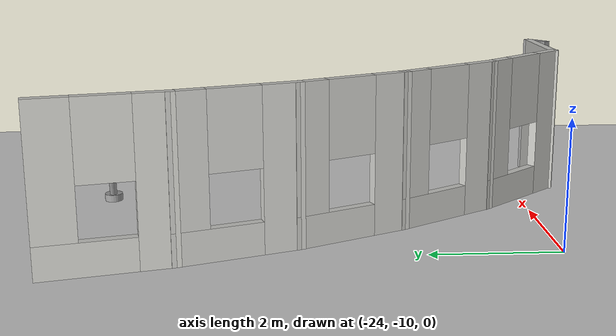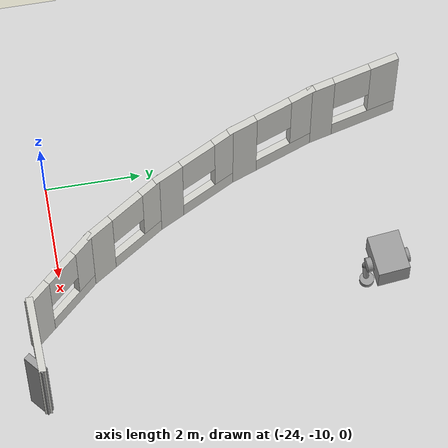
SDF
<sdf version="1.7">
 <world name="default">
  <model name="ground_plane">
   <static>1</static>
   <link name="link">
    <collision name="collision">
     <geometry><plane><normal>0 0 1</normal><size>100 100</size></plane></geometry>
     <surface>
      <contact><collide_bitmask>65535</collide_bitmask></contact>
      <friction><ode><mu>100</mu><mu2>50</mu2></ode></friction>
     </surface>
    </collision>
    <visual name="visual">
     <cast_shadows>0</cast_shadows>
     <geometry><plane><normal>0 0 1</normal><size>100 100</size></plane></geometry>
     <material>
      <script><uri>file://media/materials/scripts/gazebo.material</uri><name>Gazebo/Grey</name></script>
     </material>
    </visual>
   </link>
  </model>
  <model name="model">
   <pose>-4.1341 -0.05921 0 0 -0 0</pose>
   <link name="Wall_77">
    <collision name="Wall_77_Collision">
     <geometry><box><size>0.478502 0.15 2.5</size></box></geometry>
     <pose>0 0 1.25 0 -0 0</pose>
    </collision>
    <visual name="Wall_77_Visual">
     <pose>0 0 1.25 0 -0 0</pose>
     <geometry><box><size>0.478502 0.15 2.5</size></box></geometry>
     <material>
      <script><uri>file://media/materials/scripts/gazebo.material</uri><name>Gazebo/Grey</name></script>
      <ambient>1 1 1 1</ambient>
     </material>
     <meta><layer>0</layer></meta>
    </visual>
    <pose>-15.1791 -10.6669 0 0 -0 0.699893</pose>
   </link>
   <link name="Wall_78">
    <collision name="Wall_78_Collision">
     <geometry><box><size>1.59207 0.15 2.5</size></box></geometry>
     <pose>0 0 1.25 0 -0 0</pose>
    </collision>
    <visual name="Wall_78_Visual">
     <pose>0 0 1.25 0 -0 0</pose>
     <geometry><box><size>1.59207 0.15 2.5</size></box></geometry>
     <material>
      <script><uri>file://media/materials/scripts/gazebo.material</uri><name>Gazebo/CeilingTiled</name></script>
      <ambient>0.964706 1 0.972549 1</ambient>
     </material>
     <meta><layer>0</layer></meta>
    </visual>
    <pose>-15.7742 -10.5809 0 0 -0 -3.11408</pose>
   </link>
   <link name="Wall_80">
    <pose>-17.0835 -9.92626 0 0 -0 2.28824</pose>
    <visual name="Wall_80_Visual_0">
     <pose>-0.679132 0 1.25 0 -0 0</pose>
     <geometry><box><size>0.582002 0.15 2.5</size></box></geometry>
     <material>
      <script><uri>file://media/materials/scripts/gazebo.material</uri><name>Gazebo/CeilingTiled</name></script>
      <ambient>0 0.423529 0.960784 1</ambient>
     </material>
     <meta><layer>0</layer></meta>
    </visual>
    <collision name="Wall_80_Collision_0">
     <geometry><box><size>0.582002 0.15 2.5</size></box></geometry>
     <pose>-0.679132 0 1.25 0 -0 0</pose>
    </collision>
    <visual name="Wall_80_Visual_1">
     <pose>0.291001 0 0.25 0 -0 0</pose>
     <geometry><box><size>1.35826 0.15 0.5</size></box></geometry>
     <material>
      <script><uri>file://media/materials/scripts/gazebo.material</uri><name>Gazebo/CeilingTiled</name></script>
      <ambient>0 0.423529 0.960784 1</ambient>
     </material>
     <meta><layer>0</layer></meta>
    </visual>
    <collision name="Wall_80_Collision_1">
     <geometry><box><size>1.35826 0.15 0.5</size></box></geometry>
     <pose>0.291001 0 0.25 0 -0 0</pose>
    </collision>
    <visual name="Wall_80_Visual_2">
     <pose>0.691001 0 1.5 0 -0 0</pose>
     <geometry><box><size>0.558264 0.15 2</size></box></geometry>
     <material>
      <script><uri>file://media/materials/scripts/gazebo.material</uri><name>Gazebo/CeilingTiled</name></script>
      <ambient>0 0.423529 0.960784 1</ambient>
     </material>
     <meta><layer>0</layer></meta>
    </visual>
    <collision name="Wall_80_Collision_2">
     <geometry><box><size>0.558264 0.15 2</size></box></geometry>
     <pose>0.691001 0 1.5 0 -0 0</pose>
    </collision>
    <visual name="Wall_80_Visual_3">
     <pose>0.011869 0 1.9 0 -0 0</pose>
     <geometry><box><size>0.8 0.15 1.2</size></box></geometry>
     <material>
      <script><uri>file://media/materials/scripts/gazebo.material</uri><name>Gazebo/CeilingTiled</name></script>
      <ambient>0 0.423529 0.960784 1</ambient>
     </material>
     <meta><layer>0</layer></meta>
    </visual>
    <collision name="Wall_80_Collision_3">
     <geometry><box><size>0.8 0.15 1.2</size></box></geometry>
     <pose>0.011869 0 1.9 0 -0 0</pose>
    </collision>
   </link>
   <link name="Wall_81">
    <pose>-18.1613 -8.48473 0 0 -0 2.13864</pose>
    <visual name="Wall_81_Visual_0">
     <pose>-0.666849 0 1.25 0 -0 0</pose>
     <geometry><box><size>0.635978 0.15 2.5</size></box></geometry>
     <material>
      <script><uri>file://media/materials/scripts/gazebo.material</uri><name>Gazebo/CeilingTiled</name></script>
      <ambient>0 0.423529 0.960784 1</ambient>
     </material>
     <meta><layer>0</layer></meta>
    </visual>
    <collision name="Wall_81_Collision_0">
     <geometry><box><size>0.635978 0.15 2.5</size></box></geometry>
     <pose>-0.666849 0 1.25 0 -0 0</pose>
    </collision>
    <visual name="Wall_81_Visual_1">
     <pose>0.317989 0 0.25 0 -0 0</pose>
     <geometry><box><size>1.3337 0.15 0.5</size></box></geometry>
     <material>
      <script><uri>file://media/materials/scripts/gazebo.material</uri><name>Gazebo/CeilingTiled</name></script>
      <ambient>0 0.423529 0.960784 1</ambient>
     </material>
     <meta><layer>0</layer></meta>
    </visual>
    <collision name="Wall_81_Collision_1">
     <geometry><box><size>1.3337 0.15 0.5</size></box></geometry>
     <pose>0.317989 0 0.25 0 -0 0</pose>
    </collision>
    <visual name="Wall_81_Visual_2">
     <pose>0.717989 0 1.5 0 -0 0</pose>
     <geometry><box><size>0.533697 0.15 2</size></box></geometry>
     <material>
      <script><uri>file://media/materials/scripts/gazebo.material</uri><name>Gazebo/CeilingTiled</name></script>
      <ambient>0 0.423529 0.960784 1</ambient>
     </material>
     <meta><layer>0</layer></meta>
    </visual>
    <collision name="Wall_81_Collision_2">
     <geometry><box><size>0.533697 0.15 2</size></box></geometry>
     <pose>0.717989 0 1.5 0 -0 0</pose>
    </collision>
    <visual name="Wall_81_Visual_3">
     <pose>0.05114 0 1.9 0 -0 0</pose>
     <geometry><box><size>0.8 0.15 1.2</size></box></geometry>
     <material>
      <script><uri>file://media/materials/scripts/gazebo.material</uri><name>Gazebo/CeilingTiled</name></script>
      <ambient>0 0.423529 0.960784 1</ambient>
     </material>
     <meta><layer>0</layer></meta>
    </visual>
    <collision name="Wall_81_Collision_3">
     <geometry><box><size>0.8 0.15 1.2</size></box></geometry>
     <pose>0.05114 0 1.9 0 -0 0</pose>
    </collision>
   </link>
   <link name="Wall_83">
    <pose>-19.0596 -6.89911 0 0 -0 2.03407</pose>
    <visual name="Wall_83_Visual_0">
     <pose>-0.667927 0 1.25 0 -0 0</pose>
     <geometry><box><size>0.644177 0.15 2.5</size></box></geometry>
     <material>
      <script><uri>file://media/materials/scripts/gazebo.material</uri><name>Gazebo/CeilingTiled</name></script>
      <ambient>0 0.423529 0.960784 1</ambient>
     </material>
     <meta><layer>0</layer></meta>
    </visual>
    <collision name="Wall_83_Collision_0">
     <geometry><box><size>0.644177 0.15 2.5</size></box></geometry>
     <pose>-0.667927 0 1.25 0 -0 0</pose>
    </collision>
    <visual name="Wall_83_Visual_1">
     <pose>0.322089 0 0.25 0 -0 0</pose>
     <geometry><box><size>1.33585 0.15 0.5</size></box></geometry>
     <material>
      <script><uri>file://media/materials/scripts/gazebo.material</uri><name>Gazebo/CeilingTiled</name></script>
      <ambient>0 0.423529 0.960784 1</ambient>
     </material>
     <meta><layer>0</layer></meta>
    </visual>
    <collision name="Wall_83_Collision_1">
     <geometry><box><size>1.33585 0.15 0.5</size></box></geometry>
     <pose>0.322089 0 0.25 0 -0 0</pose>
    </collision>
    <visual name="Wall_83_Visual_2">
     <pose>0.722089 0 1.5 0 -0 0</pose>
     <geometry><box><size>0.535853 0.15 2</size></box></geometry>
     <material>
      <script><uri>file://media/materials/scripts/gazebo.material</uri><name>Gazebo/CeilingTiled</name></script>
      <ambient>0 0.423529 0.960784 1</ambient>
     </material>
     <meta><layer>0</layer></meta>
    </visual>
    <collision name="Wall_83_Collision_2">
     <geometry><box><size>0.535853 0.15 2</size></box></geometry>
     <pose>0.722089 0 1.5 0 -0 0</pose>
    </collision>
    <visual name="Wall_83_Visual_3">
     <pose>0.054162 0 1.9 0 -0 0</pose>
     <geometry><box><size>0.8 0.15 1.2</size></box></geometry>
     <material>
      <script><uri>file://media/materials/scripts/gazebo.material</uri><name>Gazebo/CeilingTiled</name></script>
      <ambient>0 0.423529 0.960784 1</ambient>
     </material>
     <meta><layer>0</layer></meta>
    </visual>
    <collision name="Wall_83_Collision_3">
     <geometry><box><size>0.8 0.15 1.2</size></box></geometry>
     <pose>0.054162 0 1.9 0 -0 0</pose>
    </collision>
   </link>
   <link name="Wall_84">
    <pose>-19.7859 -5.2077 0 0 -0 1.91957</pose>
    <visual name="Wall_84_Visual_0">
     <pose>-0.683971 0 1.25 0 -0 0</pose>
     <geometry><box><size>0.639593 0.15 2.5</size></box></geometry>
     <material>
      <script><uri>file://media/materials/scripts/gazebo.material</uri><name>Gazebo/CeilingTiled</name></script>
      <ambient>0 0.423529 0.960784 1</ambient>
     </material>
     <meta><layer>0</layer></meta>
    </visual>
    <collision name="Wall_84_Collision_0">
     <geometry><box><size>0.639593 0.15 2.5</size></box></geometry>
     <pose>-0.683971 0 1.25 0 -0 0</pose>
    </collision>
    <visual name="Wall_84_Visual_1">
     <pose>0.319797 0 0.25 0 -0 0</pose>
     <geometry><box><size>1.36794 0.15 0.5</size></box></geometry>
     <material>
      <script><uri>file://media/materials/scripts/gazebo.material</uri><name>Gazebo/CeilingTiled</name></script>
      <ambient>0 0.423529 0.960784 1</ambient>
     </material>
     <meta><layer>0</layer></meta>
    </visual>
    <collision name="Wall_84_Collision_1">
     <geometry><box><size>1.36794 0.15 0.5</size></box></geometry>
     <pose>0.319797 0 0.25 0 -0 0</pose>
    </collision>
    <visual name="Wall_84_Visual_2">
     <pose>0.719797 0 1.5 0 -0 0</pose>
     <geometry><box><size>0.567942 0.15 2</size></box></geometry>
     <material>
      <script><uri>file://media/materials/scripts/gazebo.material</uri><name>Gazebo/CeilingTiled</name></script>
      <ambient>0 0.423529 0.960784 1</ambient>
     </material>
     <meta><layer>0</layer></meta>
    </visual>
    <collision name="Wall_84_Collision_2">
     <geometry><box><size>0.567942 0.15 2</size></box></geometry>
     <pose>0.719797 0 1.5 0 -0 0</pose>
    </collision>
    <visual name="Wall_84_Visual_3">
     <pose>0.035826 0 1.9 0 -0 0</pose>
     <geometry><box><size>0.8 0.15 1.2</size></box></geometry>
     <material>
      <script><uri>file://media/materials/scripts/gazebo.material</uri><name>Gazebo/CeilingTiled</name></script>
      <ambient>0 0.423529 0.960784 1</ambient>
     </material>
     <meta><layer>0</layer></meta>
    </visual>
    <collision name="Wall_84_Collision_3">
     <geometry><box><size>0.8 0.15 1.2</size></box></geometry>
     <pose>0.035826 0 1.9 0 -0 0</pose>
    </collision>
   </link>
   <link name="Wall_86">
    <pose>-20.3246 -3.43824 0 0 -0 1.81282</pose>
    <visual name="Wall_86_Visual_0">
     <pose>-0.710407 0 1.25 0 -0 0</pose>
     <geometry><box><size>0.576238 0.15 2.5</size></box></geometry>
     <material>
      <script><uri>file://media/materials/scripts/gazebo.material</uri><name>Gazebo/CeilingTiled</name></script>
      <ambient>0 0.423529 0.960784 1</ambient>
     </material>
     <meta><layer>0</layer></meta>
    </visual>
    <collision name="Wall_86_Collision_0">
     <geometry><box><size>0.576238 0.15 2.5</size></box></geometry>
     <pose>-0.710407 0 1.25 0 -0 0</pose>
    </collision>
    <visual name="Wall_86_Visual_1">
     <pose>0.288119 0 0.25 0 -0 0</pose>
     <geometry><box><size>1.42081 0.15 0.5</size></box></geometry>
     <material>
      <script><uri>file://media/materials/scripts/gazebo.material</uri><name>Gazebo/CeilingTiled</name></script>
      <ambient>0 0.423529 0.960784 1</ambient>
     </material>
     <meta><layer>0</layer></meta>
    </visual>
    <collision name="Wall_86_Collision_1">
     <geometry><box><size>1.42081 0.15 0.5</size></box></geometry>
     <pose>0.288119 0 0.25 0 -0 0</pose>
    </collision>
    <visual name="Wall_86_Visual_2">
     <pose>0.688119 0 1.5 0 -0 0</pose>
     <geometry><box><size>0.620814 0.15 2</size></box></geometry>
     <material>
      <script><uri>file://media/materials/scripts/gazebo.material</uri><name>Gazebo/CeilingTiled</name></script>
      <ambient>0 0.423529 0.960784 1</ambient>
     </material>
     <meta><layer>0</layer></meta>
    </visual>
    <collision name="Wall_86_Collision_2">
     <geometry><box><size>0.620814 0.15 2</size></box></geometry>
     <pose>0.688119 0 1.5 0 -0 0</pose>
    </collision>
    <visual name="Wall_86_Visual_3">
     <pose>-0.022288 0 1.9 0 -0 0</pose>
     <geometry><box><size>0.8 0.15 1.2</size></box></geometry>
     <material>
      <script><uri>file://media/materials/scripts/gazebo.material</uri><name>Gazebo/CeilingTiled</name></script>
      <ambient>0 0.423529 0.960784 1</ambient>
     </material>
     <meta><layer>0</layer></meta>
    </visual>
    <collision name="Wall_86_Collision_3">
     <geometry><box><size>0.8 0.15 1.2</size></box></geometry>
     <pose>-0.022288 0 1.9 0 -0 0</pose>
    </collision>
   </link>
   <static>1</static>
  </model>
  <model name="model_1">
   <link name="link_0_clone">
    <inertial>
     <mass>1</mass>
     <inertia><ixx>0.145833</ixx><ixy>0</ixy><ixz>0</ixz><iyy>0.145833</iyy><iyz>0</iyz><izz>0.125</izz></inertia>
    </inertial>
    <pose>-1.70371 0.05719 0.046277 0 -0 0</pose>
    <visual name="visual">
     <geometry><cylinder><radius>0.15</radius><length>0.12</length></cylinder></geometry>
     <material>
      <lighting>1</lighting>
      <script><uri>file://media/materials/scripts/gazebo.material</uri><name>Gazebo/Grey</name></script>
      <shader type="pixel"><normal_map>__default__</normal_map></shader>
      <ambient>0.3 0.3 0.3 1</ambient>
      <diffuse>0.7 0.7 0.7 1</diffuse>
      <specular>0.01 0.01 0.01 1</specular>
      <emissive>0 0 0 1</emissive>
     </material>
    </visual>
    <collision name="collision">
     <geometry><cylinder><radius>0.15</radius><length>0.12</length></cylinder></geometry>
     <surface>
      <friction>
       <ode><mu>1</mu><mu2>1</mu2><fdir1>0 0 0</fdir1><slip1>0</slip1><slip2>0</slip2></ode>
       <torsional>
        <coefficient>1</coefficient>
        <patch_radius>0</patch_radius>
        <surface_radius>0</surface_radius>
        <use_patch_radius>1</use_patch_radius>
        <ode><slip>0</slip></ode>
       </torsional>
      </friction>
      <bounce><restitution_coefficient>0</restitution_coefficient><threshold>1e+06</threshold></bounce>
      <contact>
       <collide_without_contact>0</collide_without_contact>
       <collide_without_contact_bitmask>1</collide_without_contact_bitmask>
       <collide_bitmask>1</collide_bitmask>
       <ode>
        <soft_cfm>0</soft_cfm>
        <soft_erp>0.2</soft_erp>
        <kp>1e+13</kp>
        <kd>1</kd>
        <max_vel>0.01</max_vel>
        <min_depth>0</min_depth>
       </ode>
       <bullet>
        <split_impulse>1</split_impulse>
        <split_impulse_penetration_threshold>-0.01</split_impulse_penetration_threshold>
        <soft_cfm>0</soft_cfm>
        <soft_erp>0.2</soft_erp>
        <kp>1e+13</kp>
        <kd>1</kd>
       </bullet>
      </contact>
     </surface>
    </collision>
   </link>
   <link name="link_0_clone_clone">
    <inertial>
     <mass>1</mass>
     <inertia><ixx>0.145833</ixx><ixy>0</ixy><ixz>0</ixz><iyy>0.145833</iyy><iyz>0</iyz><izz>0.125</izz></inertia>
    </inertial>
    <pose>-1.70371 -0.715173 0.046277 0 -0 0</pose>
    <visual name="visual">
     <geometry><cylinder><radius>0.15</radius><length>0.12</length></cylinder></geometry>
     <material>
      <lighting>1</lighting>
      <script><uri>file://media/materials/scripts/gazebo.material</uri><name>Gazebo/Grey</name></script>
      <shader type="pixel"><normal_map>__default__</normal_map></shader>
      <ambient>0.3 0.3 0.3 1</ambient>
      <diffuse>0.7 0.7 0.7 1</diffuse>
      <specular>0.01 0.01 0.01 1</specular>
      <emissive>0 0 0 1</emissive>
     </material>
    </visual>
    <collision name="collision">
     <geometry><cylinder><radius>0.15</radius><length>0.12</length></cylinder></geometry>
     <surface>
      <friction>
       <ode><mu>1</mu><mu2>1</mu2><fdir1>0 0 0</fdir1><slip1>0</slip1><slip2>0</slip2></ode>
       <torsional>
        <coefficient>1</coefficient>
        <patch_radius>0</patch_radius>
        <surface_radius>0</surface_radius>
        <use_patch_radius>1</use_patch_radius>
        <ode><slip>0</slip></ode>
       </torsional>
      </friction>
      <bounce><restitution_coefficient>0</restitution_coefficient><threshold>1e+06</threshold></bounce>
      <contact>
       <collide_without_contact>0</collide_without_contact>
       <collide_without_contact_bitmask>1</collide_without_contact_bitmask>
       <collide_bitmask>1</collide_bitmask>
       <ode>
        <soft_cfm>0</soft_cfm>
        <soft_erp>0.2</soft_erp>
        <kp>1e+13</kp>
        <kd>1</kd>
        <max_vel>0.01</max_vel>
        <min_depth>0</min_depth>
       </ode>
       <bullet>
        <split_impulse>1</split_impulse>
        <split_impulse_penetration_threshold>-0.01</split_impulse_penetration_threshold>
        <soft_cfm>0</soft_cfm>
        <soft_erp>0.2</soft_erp>
        <kp>1e+13</kp>
        <kd>1</kd>
       </bullet>
      </contact>
     </surface>
    </collision>
   </link>
   <link name="link_1_clone_0">
    <inertial>
     <mass>1</mass>
     <inertia><ixx>0.145833</ixx><ixy>0</ixy><ixz>0</ixz><iyy>0.145833</iyy><iyz>0</iyz><izz>0.125</izz></inertia>
    </inertial>
    <pose>-1.79935 -0.715173 0.645744 0 -0 0</pose>
    <visual name="visual">
     <pose>0 0 0 0 0.35 0</pose>
     <geometry><cylinder><radius>0.06</radius><length>0.4</length></cylinder></geometry>
     <material>
      <lighting>1</lighting>
      <script><uri>file://media/materials/scripts/gazebo.material</uri><name>Gazebo/Grey</name></script>
      <shader type="pixel"><normal_map>__default__</normal_map></shader>
      <ambient>0.3 0.3 0.3 1</ambient>
      <diffuse>0.7 0.7 0.7 1</diffuse>
      <specular>0.01 0.01 0.01 1</specular>
      <emissive>0 0 0 1</emissive>
     </material>
    </visual>
    <collision name="collision">
     <pose>0 0 0 0 0.35 0</pose>
     <geometry><cylinder><radius>0.06</radius><length>0.4</length></cylinder></geometry>
     <surface>
      <friction>
       <ode><mu>1</mu><mu2>1</mu2><fdir1>0 0 0</fdir1><slip1>0</slip1><slip2>0</slip2></ode>
       <torsional>
        <coefficient>1</coefficient>
        <patch_radius>0</patch_radius>
        <surface_radius>0</surface_radius>
        <use_patch_radius>1</use_patch_radius>
        <ode><slip>0</slip></ode>
       </torsional>
      </friction>
      <bounce><restitution_coefficient>0</restitution_coefficient><threshold>1e+06</threshold></bounce>
      <contact>
       <collide_without_contact>0</collide_without_contact>
       <collide_without_contact_bitmask>1</collide_without_contact_bitmask>
       <collide_bitmask>1</collide_bitmask>
       <ode>
        <soft_cfm>0</soft_cfm>
        <soft_erp>0.2</soft_erp>
        <kp>1e+13</kp>
        <kd>1</kd>
        <max_vel>0.01</max_vel>
        <min_depth>0</min_depth>
       </ode>
       <bullet>
        <split_impulse>1</split_impulse>
        <split_impulse_penetration_threshold>-0.01</split_impulse_penetration_threshold>
        <soft_cfm>0</soft_cfm>
        <soft_erp>0.2</soft_erp>
        <kp>1e+13</kp>
        <kd>1</kd>
       </bullet>
      </contact>
     </surface>
    </collision>
   </link>
   <link name="link_1_clone_0_clone">
    <inertial>
     <mass>1</mass>
     <inertia><ixx>0.145833</ixx><ixy>0</ixy><ixz>0</ixz><iyy>0.145833</iyy><iyz>0</iyz><izz>0.125</izz></inertia>
    </inertial>
    <pose>-1.8087 -0.714544 0.232355 0 -0 0</pose>
    <visual name="visual">
     <pose>0 0 0 0 -0.35 0</pose>
     <geometry><cylinder><radius>0.06</radius><length>0.4</length></cylinder></geometry>
     <material>
      <lighting>1</lighting>
      <script><uri>file://media/materials/scripts/gazebo.material</uri><name>Gazebo/Grey</name></script>
      <shader type="pixel"><normal_map>__default__</normal_map></shader>
      <ambient>0.3 0.3 0.3 1</ambient>
      <diffuse>0.7 0.7 0.7 1</diffuse>
      <specular>0.01 0.01 0.01 1</specular>
      <emissive>0 0 0 1</emissive>
     </material>
    </visual>
    <collision name="collision">
     <pose>0 0 0 0 -0.35 0</pose>
     <geometry><cylinder><radius>0.06</radius><length>0.4</length></cylinder></geometry>
     <surface>
      <friction>
       <ode><mu>1</mu><mu2>1</mu2><fdir1>0 0 0</fdir1><slip1>0</slip1><slip2>0</slip2></ode>
       <torsional>
        <coefficient>1</coefficient>
        <patch_radius>0</patch_radius>
        <surface_radius>0</surface_radius>
        <use_patch_radius>1</use_patch_radius>
        <ode><slip>0</slip></ode>
       </torsional>
      </friction>
      <bounce><restitution_coefficient>0</restitution_coefficient><threshold>1e+06</threshold></bounce>
      <contact>
       <collide_without_contact>0</collide_without_contact>
       <collide_without_contact_bitmask>1</collide_without_contact_bitmask>
       <collide_bitmask>1</collide_bitmask>
       <ode>
        <soft_cfm>0</soft_cfm>
        <soft_erp>0.2</soft_erp>
        <kp>1e+13</kp>
        <kd>1</kd>
        <max_vel>0.01</max_vel>
        <min_depth>0</min_depth>
       </ode>
       <bullet>
        <split_impulse>1</split_impulse>
        <split_impulse_penetration_threshold>-0.01</split_impulse_penetration_threshold>
        <soft_cfm>0</soft_cfm>
        <soft_erp>0.2</soft_erp>
        <kp>1e+13</kp>
        <kd>1</kd>
       </bullet>
      </contact>
     </surface>
    </collision>
   </link>
   <link name="link_1_clone_0_clone_0">
    <inertial>
     <mass>1</mass>
     <inertia><ixx>0.145833</ixx><ixy>0</ixy><ixz>0</ixz><iyy>0.145833</iyy><iyz>0</iyz><izz>0.125</izz></inertia>
    </inertial>
    <pose>-1.79935 0.058729 0.645744 0 -0 0</pose>
    <visual name="visual">
     <pose>0 0 0 0 0.35 0</pose>
     <geometry><cylinder><radius>0.06</radius><length>0.4</length></cylinder></geometry>
     <material>
      <lighting>1</lighting>
      <script><uri>file://media/materials/scripts/gazebo.material</uri><name>Gazebo/Grey</name></script>
      <shader type="pixel"><normal_map>__default__</normal_map></shader>
      <ambient>0.3 0.3 0.3 1</ambient>
      <diffuse>0.7 0.7 0.7 1</diffuse>
      <specular>0.01 0.01 0.01 1</specular>
      <emissive>0 0 0 1</emissive>
     </material>
    </visual>
    <collision name="collision">
     <pose>0 0 0 0 0.35 0</pose>
     <geometry><cylinder><radius>0.06</radius><length>0.4</length></cylinder></geometry>
     <surface>
      <friction>
       <ode><mu>1</mu><mu2>1</mu2><fdir1>0 0 0</fdir1><slip1>0</slip1><slip2>0</slip2></ode>
       <torsional>
        <coefficient>1</coefficient>
        <patch_radius>0</patch_radius>
        <surface_radius>0</surface_radius>
        <use_patch_radius>1</use_patch_radius>
        <ode><slip>0</slip></ode>
       </torsional>
      </friction>
      <bounce><restitution_coefficient>0</restitution_coefficient><threshold>1e+06</threshold></bounce>
      <contact>
       <collide_without_contact>0</collide_without_contact>
       <collide_without_contact_bitmask>1</collide_without_contact_bitmask>
       <collide_bitmask>1</collide_bitmask>
       <ode>
        <soft_cfm>0</soft_cfm>
        <soft_erp>0.2</soft_erp>
        <kp>1e+13</kp>
        <kd>1</kd>
        <max_vel>0.01</max_vel>
        <min_depth>0</min_depth>
       </ode>
       <bullet>
        <split_impulse>1</split_impulse>
        <split_impulse_penetration_threshold>-0.01</split_impulse_penetration_threshold>
        <soft_cfm>0</soft_cfm>
        <soft_erp>0.2</soft_erp>
        <kp>1e+13</kp>
        <kd>1</kd>
       </bullet>
      </contact>
     </surface>
    </collision>
   </link>
   <link name="link_1_clone_0_clone_clone">
    <inertial>
     <mass>1</mass>
     <inertia><ixx>0.145833</ixx><ixy>0</ixy><ixz>0</ixz><iyy>0.145833</iyy><iyz>0</iyz><izz>0.125</izz></inertia>
    </inertial>
    <pose>-1.8087 0.057646 0.232355 0 -0 0</pose>
    <visual name="visual">
     <pose>0 0 0 0 -0.35 0</pose>
     <geometry><cylinder><radius>0.06</radius><length>0.4</length></cylinder></geometry>
     <material>
      <lighting>1</lighting>
      <script><uri>file://media/materials/scripts/gazebo.material</uri><name>Gazebo/Grey</name></script>
      <shader type="pixel"><normal_map>__default__</normal_map></shader>
      <ambient>0.3 0.3 0.3 1</ambient>
      <diffuse>0.7 0.7 0.7 1</diffuse>
      <specular>0.01 0.01 0.01 1</specular>
      <emissive>0 0 0 1</emissive>
     </material>
    </visual>
    <collision name="collision">
     <pose>0 0 0 0 -0.35 0</pose>
     <geometry><cylinder><radius>0.06</radius><length>0.4</length></cylinder></geometry>
     <surface>
      <friction>
       <ode><mu>1</mu><mu2>1</mu2><fdir1>0 0 0</fdir1><slip1>0</slip1><slip2>0</slip2></ode>
       <torsional>
        <coefficient>1</coefficient>
        <patch_radius>0</patch_radius>
        <surface_radius>0</surface_radius>
        <use_patch_radius>1</use_patch_radius>
        <ode><slip>0</slip></ode>
       </torsional>
      </friction>
      <bounce><restitution_coefficient>0</restitution_coefficient><threshold>1e+06</threshold></bounce>
      <contact>
       <collide_without_contact>0</collide_without_contact>
       <collide_without_contact_bitmask>1</collide_without_contact_bitmask>
       <collide_bitmask>1</collide_bitmask>
       <ode>
        <soft_cfm>0</soft_cfm>
        <soft_erp>0.2</soft_erp>
        <kp>1e+13</kp>
        <kd>1</kd>
        <max_vel>0.01</max_vel>
        <min_depth>0</min_depth>
       </ode>
       <bullet>
        <split_impulse>1</split_impulse>
        <split_impulse_penetration_threshold>-0.01</split_impulse_penetration_threshold>
        <soft_cfm>0</soft_cfm>
        <soft_erp>0.2</soft_erp>
        <kp>1e+13</kp>
        <kd>1</kd>
       </bullet>
      </contact>
     </surface>
    </collision>
   </link>
   <link name="link_2_clone">
    <inertial>
     <mass>1</mass>
     <inertia><ixx>0.145833</ixx><ixy>0</ixy><ixz>0</ixz><iyy>0.145833</iyy><iyz>0</iyz><izz>0.125</izz></inertia>
    </inertial>
    <pose>-1.66905 0.061405 0.956276 0 -0 0</pose>
    <visual name="visual">
     <pose>0 0 0 1.5708 -0 0</pose>
     <geometry><cylinder><radius>0.15</radius><length>0.12</length></cylinder></geometry>
     <material>
      <lighting>1</lighting>
      <script><uri>file://media/materials/scripts/gazebo.material</uri><name>Gazebo/Grey</name></script>
      <shader type="pixel"><normal_map>__default__</normal_map></shader>
      <ambient>0.3 0.3 0.3 1</ambient>
      <diffuse>0.7 0.7 0.7 1</diffuse>
      <specular>0.01 0.01 0.01 1</specular>
      <emissive>0 0 0 1</emissive>
     </material>
    </visual>
    <collision name="collision">
     <pose>0 0 0 1.5708 -0 0</pose>
     <geometry><cylinder><radius>0.15</radius><length>0.12</length></cylinder></geometry>
     <surface>
      <friction>
       <ode><mu>1</mu><mu2>1</mu2><fdir1>0 0 0</fdir1><slip1>0</slip1><slip2>0</slip2></ode>
       <torsional>
        <coefficient>1</coefficient>
        <patch_radius>0</patch_radius>
        <surface_radius>0</surface_radius>
        <use_patch_radius>1</use_patch_radius>
        <ode><slip>0</slip></ode>
       </torsional>
      </friction>
      <bounce><restitution_coefficient>0</restitution_coefficient><threshold>1e+06</threshold></bounce>
      <contact>
       <collide_without_contact>0</collide_without_contact>
       <collide_without_contact_bitmask>1</collide_without_contact_bitmask>
       <collide_bitmask>1</collide_bitmask>
       <ode>
        <soft_cfm>0</soft_cfm>
        <soft_erp>0.2</soft_erp>
        <kp>1e+13</kp>
        <kd>1</kd>
        <max_vel>0.01</max_vel>
        <min_depth>0</min_depth>
       </ode>
       <bullet>
        <split_impulse>1</split_impulse>
        <split_impulse_penetration_threshold>-0.01</split_impulse_penetration_threshold>
        <soft_cfm>0</soft_cfm>
        <soft_erp>0.2</soft_erp>
        <kp>1e+13</kp>
        <kd>1</kd>
       </bullet>
      </contact>
     </surface>
    </collision>
   </link>
   <link name="link_2_clone_0">
    <inertial>
     <mass>1</mass>
     <inertia><ixx>0.145833</ixx><ixy>0</ixy><ixz>0</ixz><iyy>0.145833</iyy><iyz>0</iyz><izz>0.125</izz></inertia>
    </inertial>
    <pose>-1.66905 -0.715172 0.956276 0 -0 0</pose>
    <visual name="visual">
     <pose>0 0 0 1.5708 -0 0</pose>
     <geometry><cylinder><radius>0.15</radius><length>0.12</length></cylinder></geometry>
     <material>
      <lighting>1</lighting>
      <script><uri>file://media/materials/scripts/gazebo.material</uri><name>Gazebo/Grey</name></script>
      <shader type="pixel"><normal_map>__default__</normal_map></shader>
      <ambient>0.3 0.3 0.3 1</ambient>
      <diffuse>0.7 0.7 0.7 1</diffuse>
      <specular>0.01 0.01 0.01 1</specular>
      <emissive>0 0 0 1</emissive>
     </material>
    </visual>
    <collision name="collision">
     <pose>0 0 0 1.5708 -0 0</pose>
     <geometry><cylinder><radius>0.15</radius><length>0.12</length></cylinder></geometry>
     <surface>
      <friction>
       <ode><mu>1</mu><mu2>1</mu2><fdir1>0 0 0</fdir1><slip1>0</slip1><slip2>0</slip2></ode>
       <torsional>
        <coefficient>1</coefficient>
        <patch_radius>0</patch_radius>
        <surface_radius>0</surface_radius>
        <use_patch_radius>1</use_patch_radius>
        <ode><slip>0</slip></ode>
       </torsional>
      </friction>
      <bounce><restitution_coefficient>0</restitution_coefficient><threshold>1e+06</threshold></bounce>
      <contact>
       <collide_without_contact>0</collide_without_contact>
       <collide_without_contact_bitmask>1</collide_without_contact_bitmask>
       <collide_bitmask>1</collide_bitmask>
       <ode>
        <soft_cfm>0</soft_cfm>
        <soft_erp>0.2</soft_erp>
        <kp>1e+13</kp>
        <kd>1</kd>
        <max_vel>0.01</max_vel>
        <min_depth>0</min_depth>
       </ode>
       <bullet>
        <split_impulse>1</split_impulse>
        <split_impulse_penetration_threshold>-0.01</split_impulse_penetration_threshold>
        <soft_cfm>0</soft_cfm>
        <soft_erp>0.2</soft_erp>
        <kp>1e+13</kp>
        <kd>1</kd>
       </bullet>
      </contact>
     </surface>
    </collision>
   </link>
   <link name="link_4">
    <inertial>
     <mass>1</mass>
     <inertia>
      <ixx>0.166667</ixx>
      <ixy>0</ixy>
      <ixz>0</ixz>
      <iyy>0.166667</iyy>
      <iyz>0</iyz>
      <izz>0.166667</izz>
     </inertia>
    </inertial>
    <pose>-1.65199 -0.327888 1.10628 0 -0 0</pose>
    <visual name="visual">
     <geometry><box><size>0.85 0.66 0.6</size></box></geometry>
     <material>
      <lighting>1</lighting>
      <script><uri>file://media/materials/scripts/gazebo.material</uri><name>Gazebo/Grey</name></script>
      <shader type="pixel"><normal_map>__default__</normal_map></shader>
      <ambient>0.3 0.3 0.3 1</ambient>
      <diffuse>0.7 0.7 0.7 1</diffuse>
      <specular>0.01 0.01 0.01 1</specular>
      <emissive>0 0 0 1</emissive>
     </material>
    </visual>
    <collision name="collision">
     <geometry><box><size>0.85 0.66 0.6</size></box></geometry>
     <surface>
      <friction>
       <ode><mu>1</mu><mu2>1</mu2><fdir1>0 0 0</fdir1><slip1>0</slip1><slip2>0</slip2></ode>
       <torsional>
        <coefficient>1</coefficient>
        <patch_radius>0</patch_radius>
        <surface_radius>0</surface_radius>
        <use_patch_radius>1</use_patch_radius>
        <ode><slip>0</slip></ode>
       </torsional>
      </friction>
      <bounce><restitution_coefficient>0</restitution_coefficient><threshold>1e+06</threshold></bounce>
      <contact>
       <collide_without_contact>0</collide_without_contact>
       <collide_without_contact_bitmask>1</collide_without_contact_bitmask>
       <collide_bitmask>1</collide_bitmask>
       <ode>
        <soft_cfm>0</soft_cfm>
        <soft_erp>0.2</soft_erp>
        <kp>1e+13</kp>
        <kd>1</kd>
        <max_vel>0.01</max_vel>
        <min_depth>0</min_depth>
       </ode>
       <bullet>
        <split_impulse>1</split_impulse>
        <split_impulse_penetration_threshold>-0.01</split_impulse_penetration_threshold>
        <soft_cfm>0</soft_cfm>
        <soft_erp>0.2</soft_erp>
        <kp>1e+13</kp>
        <kd>1</kd>
       </bullet>
      </contact>
     </surface>
    </collision>
   </link>
   <link name="link_5_clone">
    <inertial>
     <mass>1</mass>
     <inertia><ixx>0.1</ixx><ixy>0</ixy><ixz>0</ixz><iyy>0.1</iyy><iyz>0</iyz><izz>0.1</izz></inertia>
    </inertial>
    <pose>-1.87353 -0.71583 0.431128 0 -0 0</pose>
    <visual name="visual">
     <geometry><sphere><radius>0.06</radius></sphere></geometry>
     <material>
      <lighting>1</lighting>
      <script><uri>file://media/materials/scripts/gazebo.material</uri><name>Gazebo/Grey</name></script>
      <shader type="pixel"><normal_map>__default__</normal_map></shader>
      <ambient>0.3 0.3 0.3 1</ambient>
      <diffuse>0.7 0.7 0.7 1</diffuse>
      <specular>0.01 0.01 0.01 1</specular>
      <emissive>0 0 0 1</emissive>
     </material>
    </visual>
    <collision name="collision">
     <geometry><sphere><radius>0.06</radius></sphere></geometry>
     <surface>
      <friction>
       <ode><mu>1</mu><mu2>1</mu2><fdir1>0 0 0</fdir1><slip1>0</slip1><slip2>0</slip2></ode>
       <torsional>
        <coefficient>1</coefficient>
        <patch_radius>0</patch_radius>
        <surface_radius>0</surface_radius>
        <use_patch_radius>1</use_patch_radius>
        <ode><slip>0</slip></ode>
       </torsional>
      </friction>
      <bounce><restitution_coefficient>0</restitution_coefficient><threshold>1e+06</threshold></bounce>
      <contact>
       <collide_without_contact>0</collide_without_contact>
       <collide_without_contact_bitmask>1</collide_without_contact_bitmask>
       <collide_bitmask>1</collide_bitmask>
       <ode>
        <soft_cfm>0</soft_cfm>
        <soft_erp>0.2</soft_erp>
        <kp>1e+13</kp>
        <kd>1</kd>
        <max_vel>0.01</max_vel>
        <min_depth>0</min_depth>
       </ode>
       <bullet>
        <split_impulse>1</split_impulse>
        <split_impulse_penetration_threshold>-0.01</split_impulse_penetration_threshold>
        <soft_cfm>0</soft_cfm>
        <soft_erp>0.2</soft_erp>
        <kp>1e+13</kp>
        <kd>1</kd>
       </bullet>
      </contact>
     </surface>
    </collision>
   </link>
   <link name="link_5_clone_clone">
    <inertial>
     <mass>1</mass>
     <inertia><ixx>0.1</ixx><ixy>0</ixy><ixz>0</ixz><iyy>0.1</iyy><iyz>0</iyz><izz>0.1</izz></inertia>
    </inertial>
    <pose>-1.87353 0.059552 0.431128 0 -0 0</pose>
    <visual name="visual">
     <geometry><sphere><radius>0.06</radius></sphere></geometry>
     <material>
      <lighting>1</lighting>
      <script><uri>file://media/materials/scripts/gazebo.material</uri><name>Gazebo/Grey</name></script>
      <shader type="pixel"><normal_map>__default__</normal_map></shader>
      <ambient>0.3 0.3 0.3 1</ambient>
      <diffuse>0.7 0.7 0.7 1</diffuse>
      <specular>0.01 0.01 0.01 1</specular>
      <emissive>0 0 0 1</emissive>
     </material>
    </visual>
    <collision name="collision">
     <geometry><sphere><radius>0.06</radius></sphere></geometry>
     <surface>
      <friction>
       <ode><mu>1</mu><mu2>1</mu2><fdir1>0 0 0</fdir1><slip1>0</slip1><slip2>0</slip2></ode>
       <torsional>
        <coefficient>1</coefficient>
        <patch_radius>0</patch_radius>
        <surface_radius>0</surface_radius>
        <use_patch_radius>1</use_patch_radius>
        <ode><slip>0</slip></ode>
       </torsional>
      </friction>
      <bounce><restitution_coefficient>0</restitution_coefficient><threshold>1e+06</threshold></bounce>
      <contact>
       <collide_without_contact>0</collide_without_contact>
       <collide_without_contact_bitmask>1</collide_without_contact_bitmask>
       <collide_bitmask>1</collide_bitmask>
       <ode>
        <soft_cfm>0</soft_cfm>
        <soft_erp>0.2</soft_erp>
        <kp>1e+13</kp>
        <kd>1</kd>
        <max_vel>0.01</max_vel>
        <min_depth>0</min_depth>
       </ode>
       <bullet>
        <split_impulse>1</split_impulse>
        <split_impulse_penetration_threshold>-0.01</split_impulse_penetration_threshold>
        <soft_cfm>0</soft_cfm>
        <soft_erp>0.2</soft_erp>
        <kp>1e+13</kp>
        <kd>1</kd>
       </bullet>
      </contact>
     </surface>
    </collision>
   </link>
   <joint name="link_0_clone_JOINT_0" type="fixed">
    <parent>link_0_clone</parent>
    <child>link_1_clone_0_clone_clone</child>
    <physics>
     <ode><limit><cfm>0</cfm><erp>0.2</erp></limit><suspension><cfm>0</cfm><erp>0.2</erp></suspension></ode>
    </physics>
   </joint>
   <joint name="link_0_clone_clone_JOINT_5" type="fixed">
    <parent>link_0_clone_clone</parent>
    <child>link_1_clone_0_clone</child>
    <physics>
     <ode><limit><cfm>0</cfm><erp>0.2</erp></limit><suspension><cfm>0</cfm><erp>0.2</erp></suspension></ode>
    </physics>
   </joint>
   <joint name="link_1_clone_0_JOINT_7" type="fixed">
    <parent>link_1_clone_0</parent>
    <child>link_2_clone_0</child>
    <physics>
     <ode><limit><cfm>0</cfm><erp>0.2</erp></limit><suspension><cfm>0</cfm><erp>0.2</erp></suspension></ode>
    </physics>
   </joint>
   <joint name="link_1_clone_0_JOINT_8" type="fixed">
    <parent>link_1_clone_0</parent>
    <child>link_5_clone</child>
    <physics>
     <ode><limit><cfm>0</cfm><erp>0.2</erp></limit><suspension><cfm>0</cfm><erp>0.2</erp></suspension></ode>
    </physics>
   </joint>
   <joint name="link_1_clone_0_clone_0_JOINT_2" type="fixed">
    <parent>link_1_clone_0_clone_0</parent>
    <child>link_5_clone_clone</child>
    <physics>
     <ode><limit><cfm>0</cfm><erp>0.2</erp></limit><suspension><cfm>0</cfm><erp>0.2</erp></suspension></ode>
    </physics>
   </joint>
   <joint name="link_1_clone_0_clone_JOINT_6" type="fixed">
    <parent>link_1_clone_0_clone</parent>
    <child>link_5_clone</child>
    <physics>
     <ode><limit><cfm>0</cfm><erp>0.2</erp></limit><suspension><cfm>0</cfm><erp>0.2</erp></suspension></ode>
    </physics>
   </joint>
   <joint name="link_1_clone_0_clone_clone_JOINT_1" type="fixed">
    <parent>link_1_clone_0_clone_clone</parent>
    <child>link_5_clone_clone</child>
    <physics>
     <ode><limit><cfm>0</cfm><erp>0.2</erp></limit><suspension><cfm>0</cfm><erp>0.2</erp></suspension></ode>
    </physics>
   </joint>
   <joint name="link_2_clone_0_JOINT_9" type="revolute">
    <parent>link_2_clone_0</parent>
    <child>link_4</child>
    <axis>
     <xyz>-0 -1 -0</xyz>
     <limit>
      <lower>-1.79769e+308</lower>
      <upper>1.79769e+308</upper>
      <effort>-1</effort>
      <velocity>-1</velocity>
     </limit>
     <dynamics>
      <spring_reference>0</spring_reference>
      <spring_stiffness>0</spring_stiffness>
      <damping>0</damping>
     </dynamics>
    </axis>
    <physics>
     <ode><limit><cfm>0</cfm><erp>0.2</erp></limit><suspension><cfm>0</cfm><erp>0.2</erp></suspension></ode>
    </physics>
   </joint>
   <joint name="link_2_clone_JOINT_3" type="fixed">
    <parent>link_2_clone</parent>
    <child>link_1_clone_0_clone_0</child>
    <physics>
     <ode><limit><cfm>0</cfm><erp>0.2</erp></limit><suspension><cfm>0</cfm><erp>0.2</erp></suspension></ode>
    </physics>
   </joint>
   <joint name="link_2_clone_JOINT_4" type="revolute">
    <parent>link_2_clone</parent>
    <child>link_4</child>
    <axis>
     <xyz>0 1 0</xyz>
     <limit>
      <lower>-1.79769e+308</lower>
      <upper>1.79769e+308</upper>
      <effort>-1</effort>
      <velocity>-1</velocity>
     </limit>
     <dynamics>
      <spring_reference>0</spring_reference>
      <spring_stiffness>0</spring_stiffness>
      <damping>0</damping>
     </dynamics>
    </axis>
    <physics>
     <ode><limit><cfm>0</cfm><erp>0.2</erp></limit><suspension><cfm>0</cfm><erp>0.2</erp></suspension></ode>
    </physics>
   </joint>
   <static>0</static>
   <pose>-19.2947 -2.85522 0.013733 2e-06 -5e-06 0.107236</pose>
  </model>
 </world>
</sdf>
